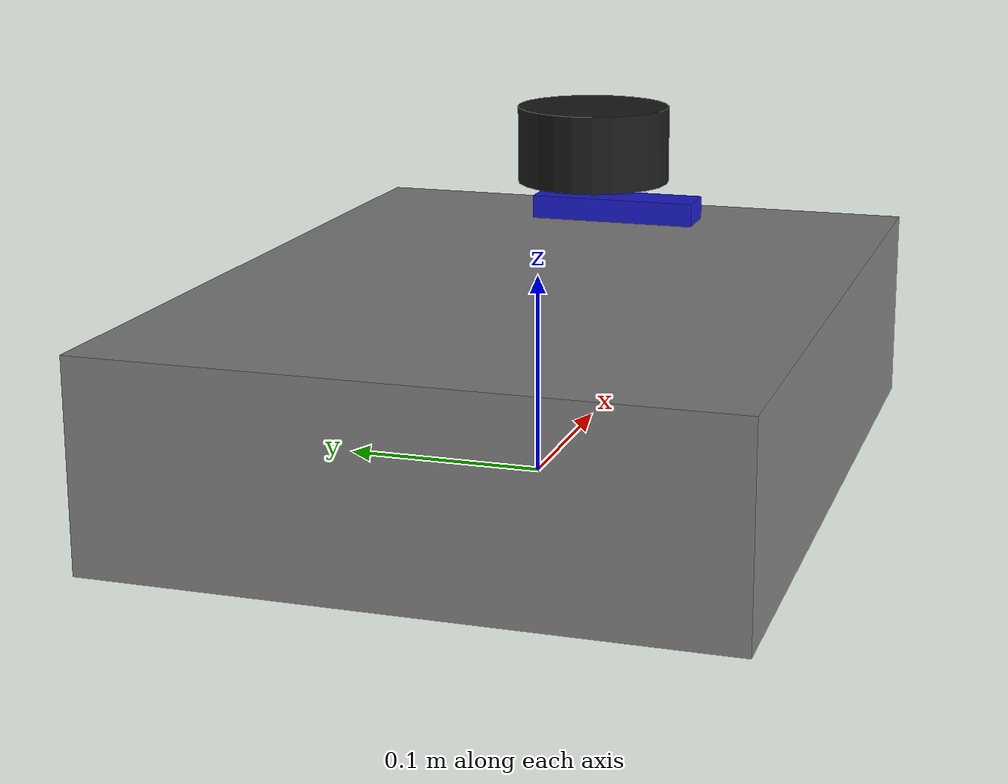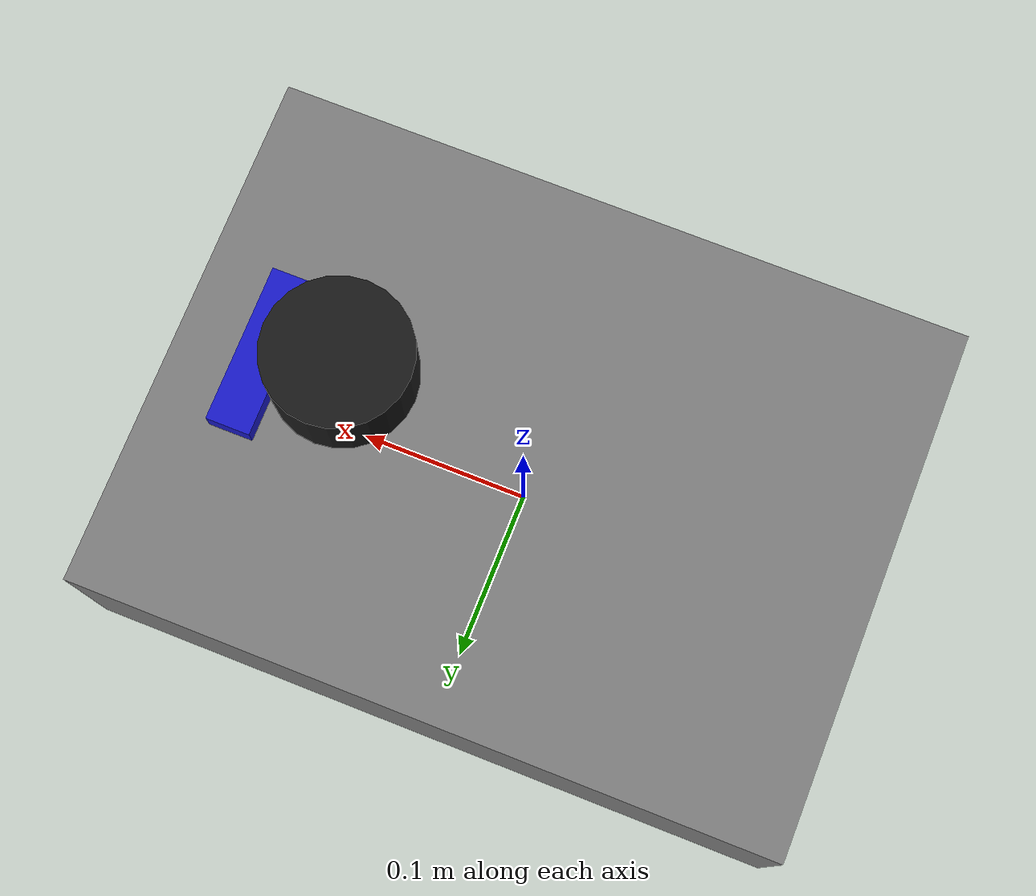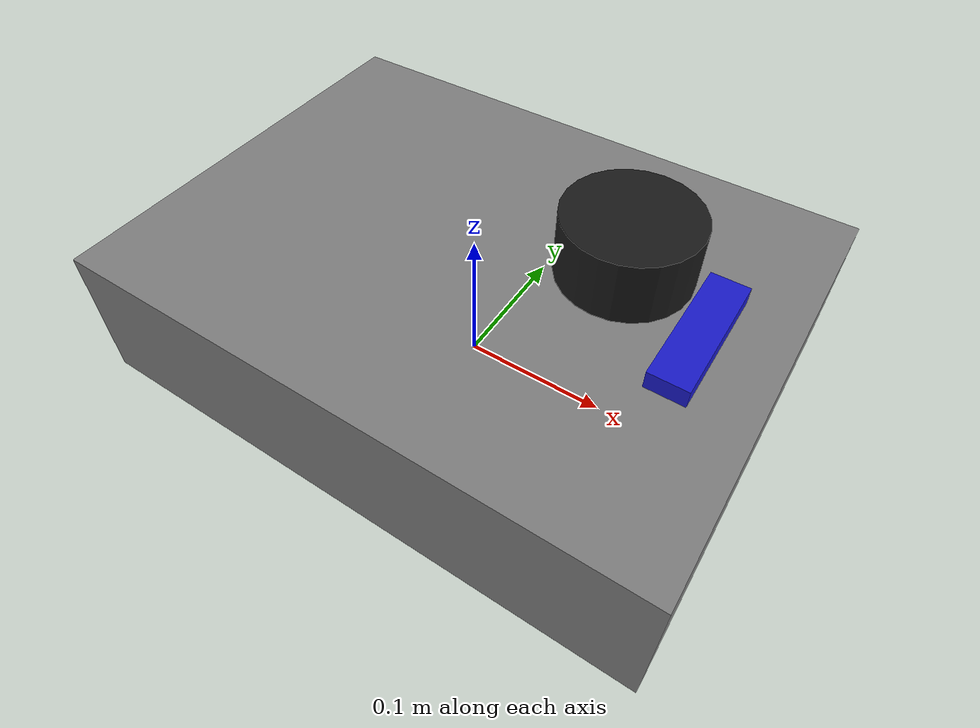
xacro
<?xml version="1.0"?>
<robot xmlns:xacro="http://www.ros.org/wiki/xacro" name="rover">

  <!-- ==================== BASE LINK ==================== -->
  <!-- The base_link is the center of your rover body at ground level -->
  <link name="base_link">
    <visual>
      <geometry>
        <!-- MEASURE: approximate rover body size in meters (length, width, height) -->
        <box size="0.40 0.30 0.10"/>
      </geometry>
      <origin xyz="0 0 0.05" rpy="0 0 0"/>
      <material name="grey">
        <color rgba="0.5 0.5 0.5 1.0"/>
      </material>
    </visual>
  </link>

  <!-- ==================== LIDAR LINK ==================== -->
  <link name="lidar_link">
    <visual>
      <geometry>
        <cylinder radius="0.04" length="0.04"/>
      </geometry>
      <material name="black">
        <color rgba="0.1 0.1 0.1 1.0"/>
      </material>
    </visual>
  </link>

  <!-- Joint connecting base_link to lidar_link -->
  <joint name="lidar_joint" type="fixed">
    <parent link="base_link"/>
    <child link="lidar_link"/>
    <origin xyz="0.10 0.0 0.15" rpy="0 0 0"/>
  </joint>

  <!-- ==================== CAMERA LINK ==================== -->
  <link name="camera_link">
    <visual>
      <geometry>
        <!-- RealSense D435 is roughly 9cm wide, 2.5cm tall, 2.5cm deep -->
        <box size="0.025 0.090 0.025"/>
      </geometry>
      <material name="blue">
        <color rgba="0.1 0.1 0.8 1.0"/>
      </material>
    </visual>
  </link>

  <!-- Joint connecting base_link to camera_link -->
  <joint name="camera_joint" type="fixed">
    <parent link="base_link"/>
    <child link="camera_link"/>
    <!--
      MEASURE AND UPDATE THESE VALUES:
      x = how far forward the camera is from rover center
      y = how far left/right
      z = height above base_link
    -->
    <origin xyz="0.15 0.0 0.10" rpy="0 0 0"/>
  </joint>

  <!-- Camera optical frame — RealSense publishes data in this frame -->
  <!-- Do not change the rpy here, this is a ROS convention for camera frames -->
  <link name="camera_optical_link"/>
  <joint name="camera_optical_joint" type="fixed">
    <parent link="camera_link"/>
    <child link="camera_optical_link"/>
    <origin xyz="0 0 0" rpy="-1.5708 0 -1.5708"/>
  </joint>

</robot>
